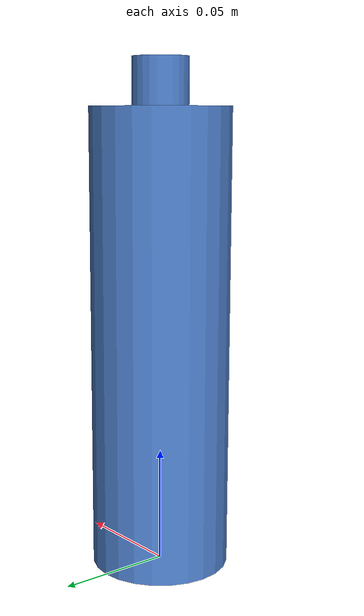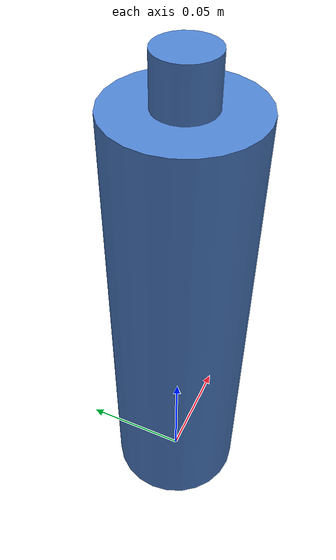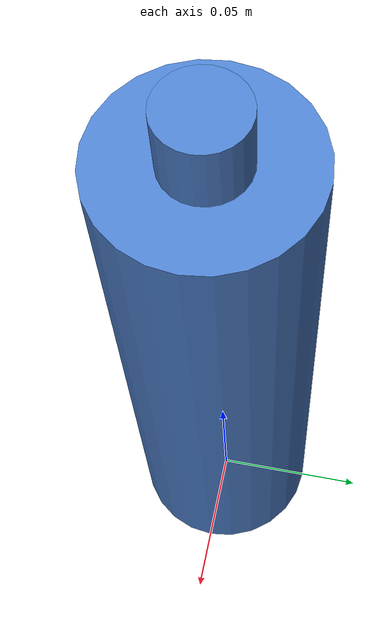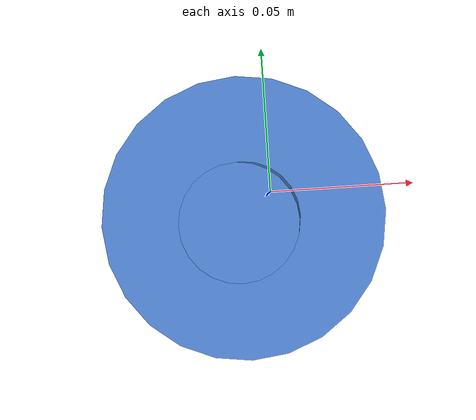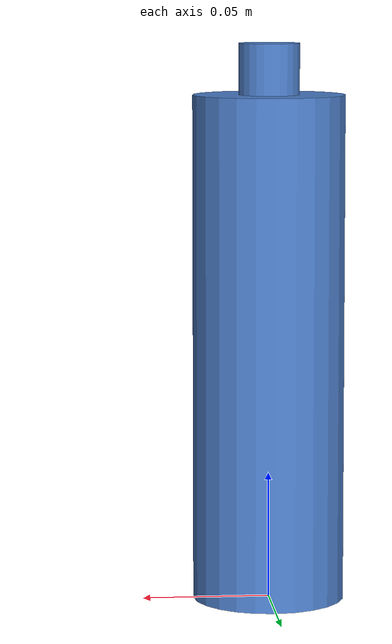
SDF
<?xml version="1.0"?>

<sdf version="1.8">

    <model name="pet_bottle">

        <link name="pet_bottle_link">

            <!-- Bottle body                        -->

            <visual name="body_visual">

                <pose>
                    0 0 0.1 0 0 0
                </pose>

                <geometry>

                    <cylinder>

                        <radius>
                            0.03
                        </radius>

                        <length>
                            0.20
                        </length>

                    </cylinder>

                </geometry>

                <material>

                    <ambient>
                        0.3 0.5 0.8 1
                    </ambient>

                    <diffuse>
                        0.3 0.5 0.8 1
                    </diffuse>

                    <specular>
                        0.5 0.5 0.5 1
                    </specular>

                </material>

            </visual>

            <!-- Bottle body collision              -->

            <collision name="body_collision">

                <pose>
                    0 0 0.1 0 0 0
                </pose>

                <geometry>

                    <cylinder>

                        <radius>
                            0.03
                        </radius>

                        <length>
                            0.20
                        </length>

                    </cylinder>

                </geometry>

            </collision>

            <!-- Bottle neck                         -->

            <visual name="neck_visual">

                <pose>
                    0 0 0.21 0 0 0
                </pose>

                <geometry>

                    <cylinder>

                        <radius>
                            0.012
                        </radius>

                        <length>
                            0.02
                        </length>

                    </cylinder>

                </geometry>

                <material>

                    <ambient>
                        0.3 0.5 0.8 1
                    </ambient>

                    <diffuse>
                        0.3 0.5 0.8 1
                    </diffuse>

                </material>

            </visual>

            <collision name="neck_collision">

                <pose>
                    0 0 0.21 0 0 0
                </pose>

                <geometry>

                    <cylinder>

                        <radius>
                            0.012
                        </radius>

                        <length>
                            0.02
                        </length>

                    </cylinder>

                </geometry>

            </collision>

            <!-- Inertial                           -->

            <inertial>

                <mass>
                    0.02
                </mass>

                <inertia>

                    <ixx>
                        0.00005
                    </ixx>

                    <iyy>
                        0.00005
                    </iyy>

                    <izz>
                        0.00002
                    </izz>

                </inertia>

            </inertial>

        </link>

    </model>

</sdf>
